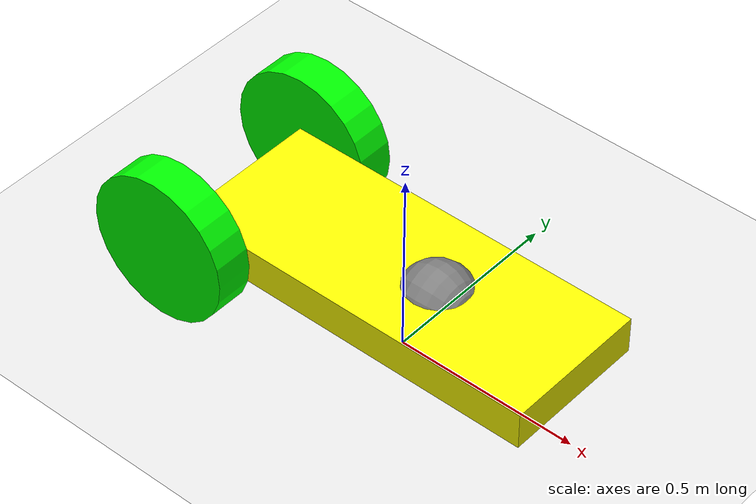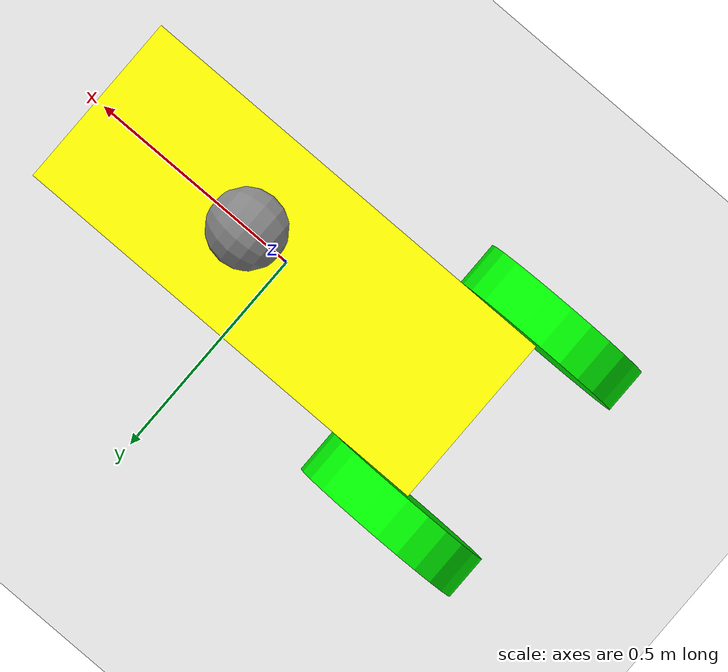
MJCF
<mujoco>
	<option gravity = "0 0 -10"/>  <!--Odstraneni gravitace-->
	<worldbody>
        <light diffuse=".5 .5 .5" pos="0 0 10" dir="0 0 -1"/>

		<geom type="plane" size="5 5 0.1" rgba="0.9 0.9 0.9 1"/>

		<body name = "chassis" pos="0 0 0.2" euler = "0 90 0">
			<joint type="free"/>
			<geom type="box" size="0.05 0.2 0.5" rgba="1 1 0 1"/>

			<site name="marker" pos="0 0 0.1" size="0.1 0.1 0.1"/>

			<body pos="0 0.25 -0.5" euler = "90 0 0">
			<joint name = "left-wheel" type="hinge" axis = "0 0 -1"/>
			<geom type="cylinder" size="0.2 0.05" rgba="0 1 0 1"/>
			</body>

			<body pos="0 -0.25 -0.5" euler = "90 0 0">
			<joint name = "right-wheel" type="hinge" axis = "0 0 -1"/>
			<geom type="cylinder" size="0.2 0.05" rgba="0 1 0 1"/>
			</body>

		</body>
	</worldbody>

	<sensor>
		<framepos objtype="site" objname="marker"/>
	</sensor>

	<actuator>
		<velocity name="left-velocity-servo" joint="left-wheel" kv="100"/>
		<velocity name="right-velocity-servo" joint="right-wheel" kv="100"/>
	</actuator>
</mujoco>
